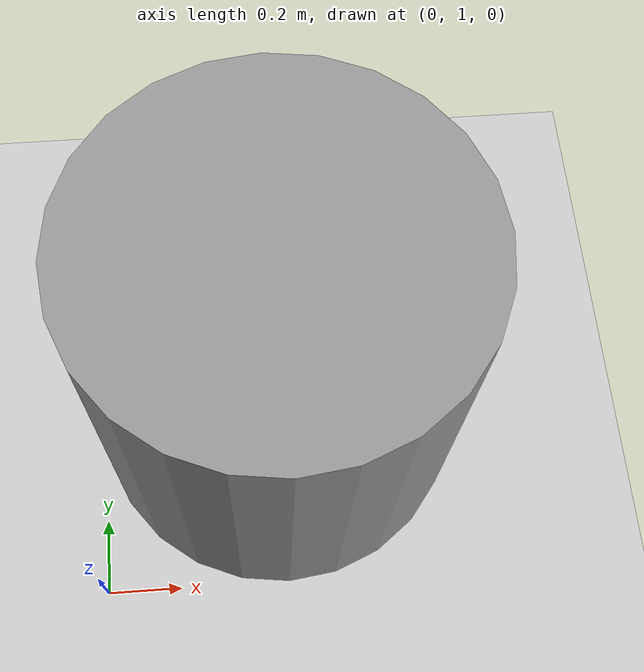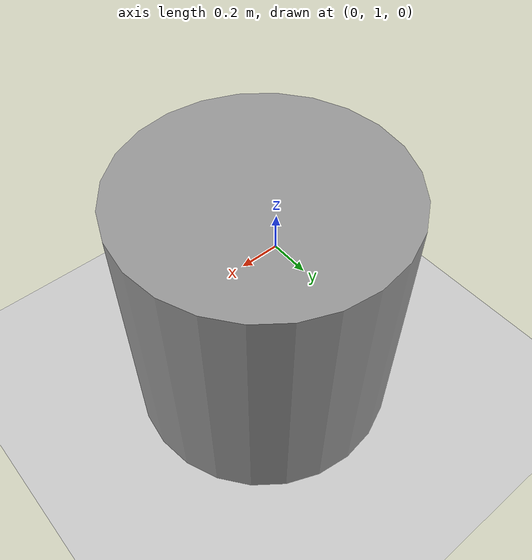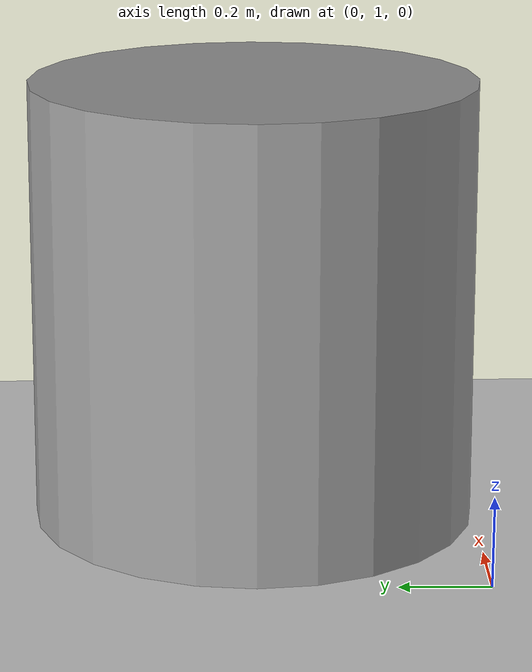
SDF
<sdf version="1.6">
 <world name="default">
  <model name="ground_plane">
   <static>1</static>
   <link name="link">
    <collision name="collision">
     <laser_retro>255</laser_retro>
     <geometry><plane><normal>0 0 1</normal><size>100 100</size></plane></geometry>
     <surface><friction><ode><mu>100</mu><mu2>50</mu2></ode></friction></surface>
    </collision>
    <visual name="visual">
     <cast_shadows>0</cast_shadows>
     <geometry><plane><normal>0 0 1</normal><size>100 100</size></plane></geometry>
     <material>
      <script><uri>file://media/materials/scripts/gazebo.material</uri><name>Gazebo/Grey</name></script>
     </material>
    </visual>
    <velocity_decay><linear>0</linear><angular>0</angular></velocity_decay>
   </link>
  </model>
  <physics name="default_physics" default="0" type="ode">
   <max_step_size>0.001</max_step_size>
   <real_time_factor>1</real_time_factor>
   <real_time_update_rate>1000</real_time_update_rate>
  </physics>
  <scene><ambient>0.4 0.4 0.4 1</ambient><background>0.7 0.7 0.7 1</background><shadows>1</shadows></scene>
  <gravity>0 0 -9.8</gravity>
  <magnetic_field>6e-06 2.3e-05 -4.2e-05</magnetic_field>
  <atmosphere type="adiabatic"/>
  <audio><device>default</device></audio>
  <spherical_coordinates>
   <surface_model>EARTH_WGS84</surface_model>
   <latitude_deg>0</latitude_deg>
   <longitude_deg>0</longitude_deg>
   <elevation>0</elevation>
   <heading_deg>0</heading_deg>
  </spherical_coordinates>
  <model name="unit_cylinder">
   <pose>0.495868 1.5 0.499992 -2e-06 4e-06 0.001726</pose>
   <link name="link">
    <inertial>
     <mass>1</mass>
     <inertia><ixx>0.145833</ixx><ixy>0</ixy><ixz>0</ixz><iyy>0.145833</iyy><iyz>0</iyz><izz>0.125</izz></inertia>
    </inertial>
    <collision name="collision">
     <geometry><cylinder><radius>0.5</radius><length>1</length></cylinder></geometry>
    </collision>
    <visual name="visual">
     <geometry><cylinder><radius>0.5</radius><length>1</length></cylinder></geometry>
     <material>
      <script><name>Gazebo/Grey</name><uri>file://media/materials/scripts/gazebo.material</uri></script>
     </material>
    </visual>
   </link>
  </model>
  <light name="user_directional_light_0" type="directional">
   <pose>-0.505351 -5.5014 1 0 -0 0</pose>
   <diffuse>0.5 0.5 0.5 1</diffuse>
   <specular>0.1 0.1 0.1 1</specular>
   <direction>0.1 0.1 -0.9</direction>
   <attenuation>
    <range>20</range>
    <constant>0.5</constant>
    <linear>0.01</linear>
    <quadratic>0.001</quadratic>
   </attenuation>
  </light>
 </world>
</sdf>
